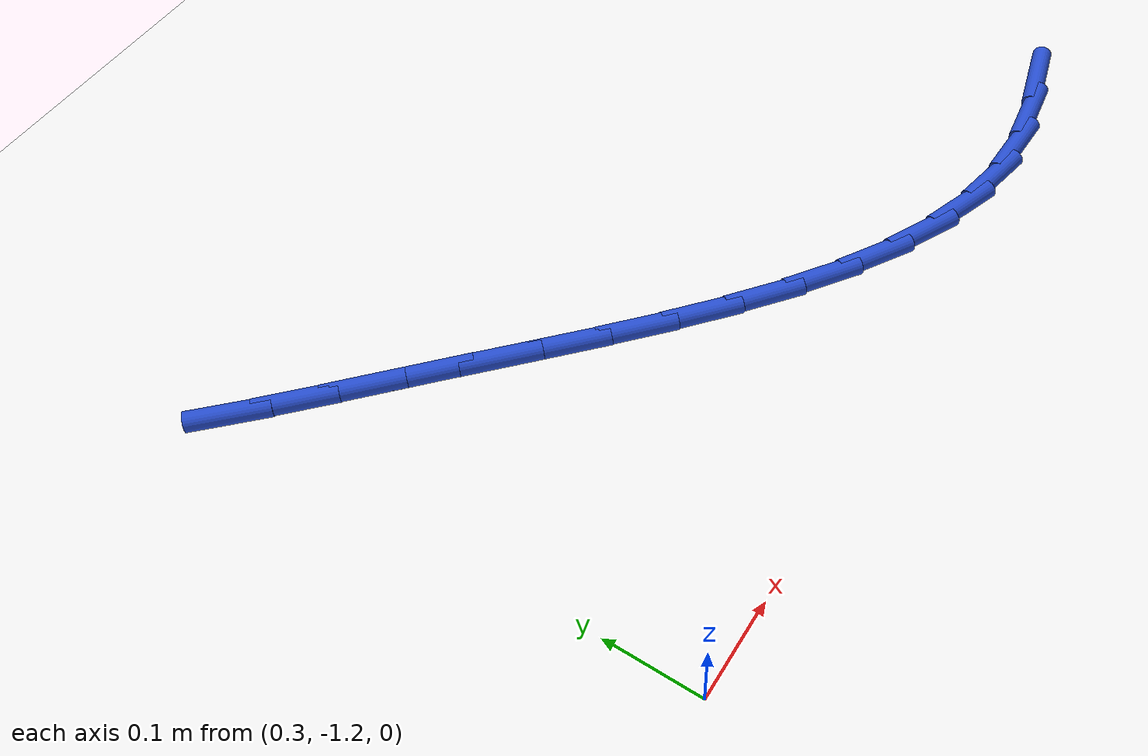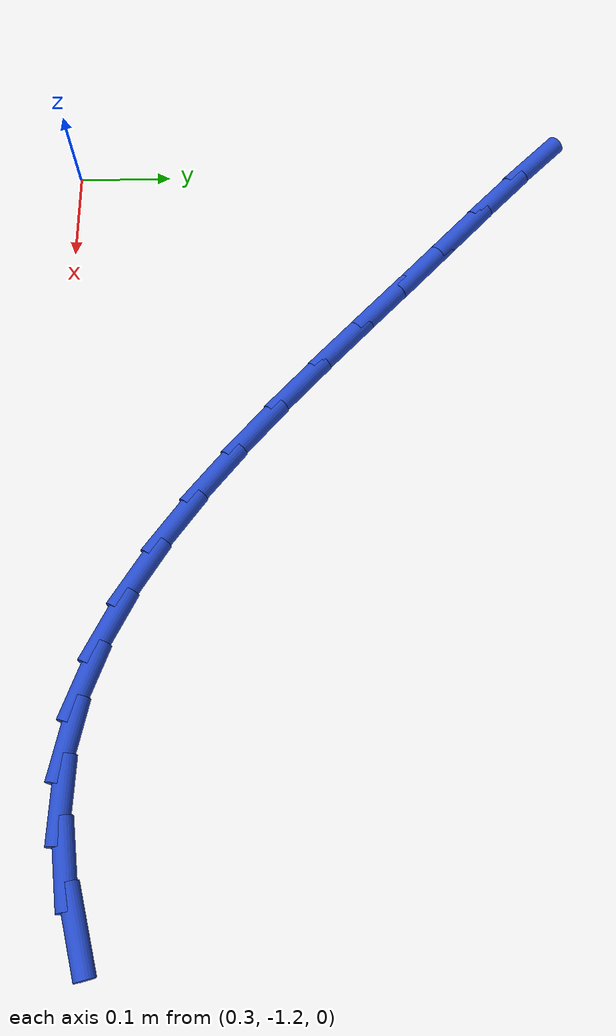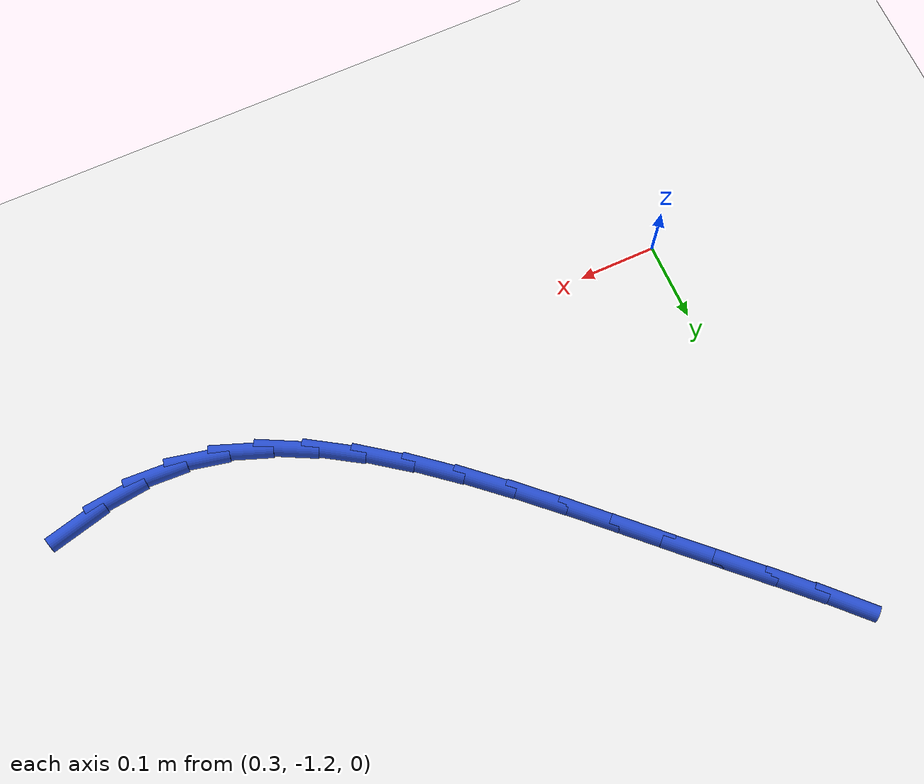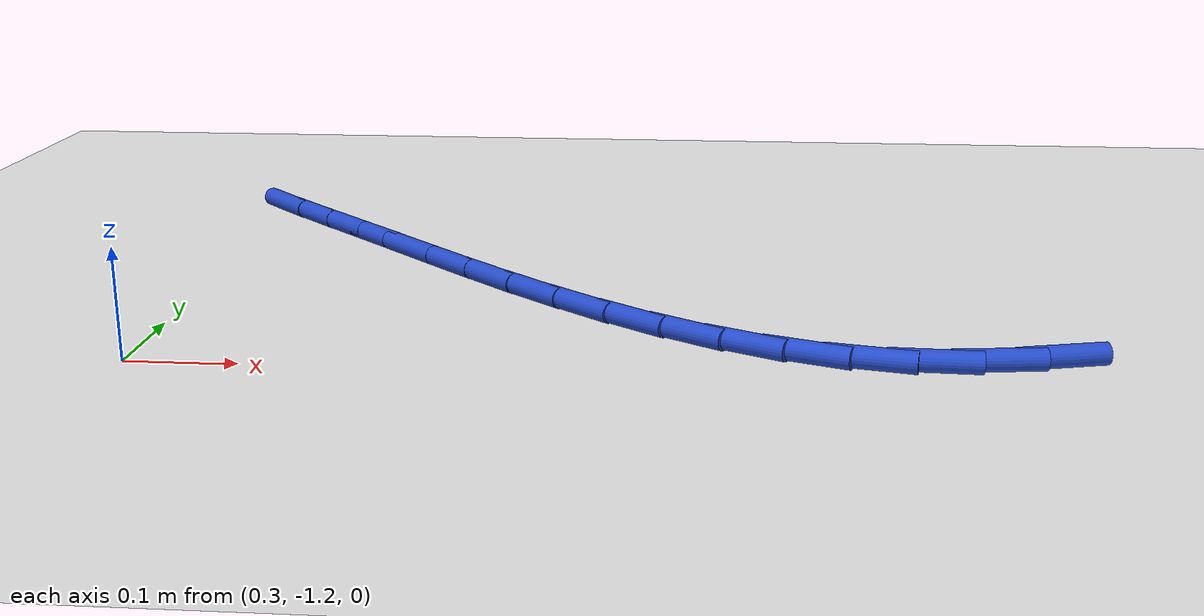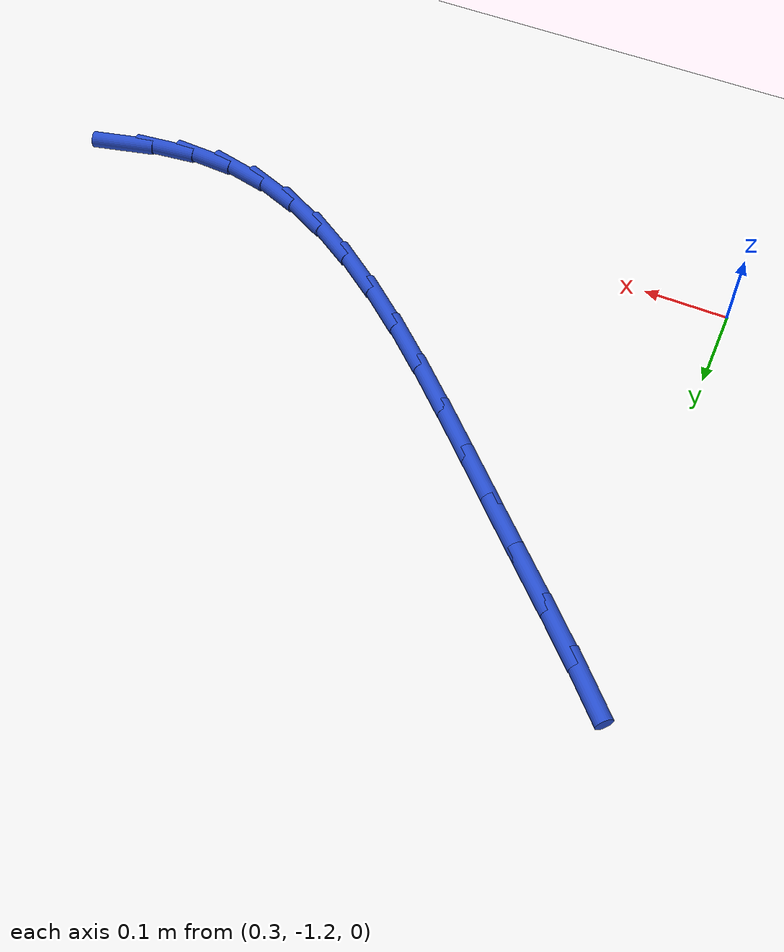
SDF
<sdf version="1.6">
 <world name="default">
  <model name="ground_plane">
   <static>1</static>
   <link name="link">
    <collision name="collision">
     <geometry><plane><normal>0 0 1</normal><size>100 100</size></plane></geometry>
     <surface><friction><ode><mu>100</mu><mu2>50</mu2></ode></friction></surface>
    </collision>
    <visual name="visual">
     <cast_shadows>0</cast_shadows>
     <geometry><plane><normal>0 0 1</normal><size>100 100</size></plane></geometry>
     <material>
      <script><uri>file://media/materials/scripts/gazebo.material</uri><name>Gazebo/WhiteGlow</name></script>
     </material>
    </visual>
   </link>
  </model>
  <model name="line">
   <link name="link_101">
    <pose>1.0916246392866724 -1.1544175302358712 0.01 0 1.57 0.24285830198355643</pose>
    <collision name="collision">
     <geometry><cylinder><radius>0.01</radius><length>0.08</length></cylinder></geometry>
    </collision>
    <visual name="visual">
     <material>
      <script><name>Gazebo/Blue</name><uri>file://media/materials/scripts/gazebo.material</uri></script>
     </material>
     <geometry><cylinder><radius>0.01</radius><length>0.08</length></cylinder></geometry>
    </visual>
   </link>
   <link name="link_102">
    <pose>1.0373609935160664 -1.1678612565806838 0.01 0 1.57 0.11743904388521537</pose>
    <collision name="collision">
     <geometry><cylinder><radius>0.01</radius><length>0.08</length></cylinder></geometry>
    </collision>
    <visual name="visual">
     <material>
      <script><name>Gazebo/Blue</name><uri>file://media/materials/scripts/gazebo.material</uri></script>
     </material>
     <geometry><cylinder><radius>0.01</radius><length>0.08</length></cylinder></geometry>
    </visual>
   </link>
   <link name="link_103">
    <pose>0.983798004581131 -1.1741807220765503 0.01 0 1.57 -0.04691897783779853</pose>
    <collision name="collision">
     <geometry><cylinder><radius>0.01</radius><length>0.08</length></cylinder></geometry>
    </collision>
    <visual name="visual">
     <material>
      <script><name>Gazebo/Blue</name><uri>file://media/materials/scripts/gazebo.material</uri></script>
     </material>
     <geometry><cylinder><radius>0.01</radius><length>0.08</length></cylinder></geometry>
    </visual>
   </link>
   <link name="link_104">
    <pose>0.9308092523546425 -1.171692718027713 0.01 0 1.57 -0.21559390068733944</pose>
    <collision name="collision">
     <geometry><cylinder><radius>0.01</radius><length>0.08</length></cylinder></geometry>
    </collision>
    <visual name="visual">
     <material>
      <script><name>Gazebo/Blue</name><uri>file://media/materials/scripts/gazebo.material</uri></script>
     </material>
     <geometry><cylinder><radius>0.01</radius><length>0.08</length></cylinder></geometry>
    </visual>
   </link>
   <link name="link_105">
    <pose>0.8783478742892474 -1.1602038065260682 0.01 0 1.57 -0.3588105428719645</pose>
    <collision name="collision">
     <geometry><cylinder><radius>0.01</radius><length>0.08</length></cylinder></geometry>
    </collision>
    <visual name="visual">
     <material>
      <script><name>Gazebo/Blue</name><uri>file://media/materials/scripts/gazebo.material</uri></script>
     </material>
     <geometry><cylinder><radius>0.01</radius><length>0.08</length></cylinder></geometry>
    </visual>
   </link>
   <link name="link_106">
    <pose>0.8264317503953963 -1.140732898901557 0.01 0 1.57 -0.47485108520492125</pose>
    <collision name="collision">
     <geometry><cylinder><radius>0.01</radius><length>0.08</length></cylinder></geometry>
    </collision>
    <visual name="visual">
     <material>
      <script><name>Gazebo/Blue</name><uri>file://media/materials/scripts/gazebo.material</uri></script>
     </material>
     <geometry><cylinder><radius>0.01</radius><length>0.08</length></cylinder></geometry>
    </visual>
   </link>
   <link name="link_107">
    <pose>0.7750806413995758 -1.114334124194558 0.01 0 1.57 -0.566261697551401</pose>
    <collision name="collision">
     <geometry><cylinder><radius>0.01</radius><length>0.08</length></cylinder></geometry>
    </collision>
    <visual name="visual">
     <material>
      <script><name>Gazebo/Blue</name><uri>file://media/materials/scripts/gazebo.material</uri></script>
     </material>
     <geometry><cylinder><radius>0.01</radius><length>0.08</length></cylinder></geometry>
    </visual>
   </link>
   <link name="link_108">
    <pose>0.7243143080282742 -1.0820616114454493 0.01 0 1.57 -0.6367146012159947</pose>
    <collision name="collision">
     <geometry><cylinder><radius>0.01</radius><length>0.08</length></cylinder></geometry>
    </collision>
    <visual name="visual">
     <material>
      <script><name>Gazebo/Blue</name><uri>file://media/materials/scripts/gazebo.material</uri></script>
     </material>
     <geometry><cylinder><radius>0.01</radius><length>0.08</length></cylinder></geometry>
    </visual>
   </link>
   <link name="link_109">
    <pose>0.6741525110079784 -1.0449694896946096 0.01 0 1.57 -0.6896698779034225</pose>
    <collision name="collision">
     <geometry><cylinder><radius>0.01</radius><length>0.08</length></cylinder></geometry>
    </collision>
    <visual name="visual">
     <material>
      <script><name>Gazebo/Blue</name><uri>file://media/materials/scripts/gazebo.material</uri></script>
     </material>
     <geometry><cylinder><radius>0.01</radius><length>0.08</length></cylinder></geometry>
    </visual>
   </link>
   <link name="link_110">
    <pose>0.6246150110651744 -1.004111887982416 0.01 0 1.57 -0.7278762301370987</pose>
    <collision name="collision">
     <geometry><cylinder><radius>0.01</radius><length>0.08</length></cylinder></geometry>
    </collision>
    <visual name="visual">
     <material>
      <script><name>Gazebo/Blue</name><uri>file://media/materials/scripts/gazebo.material</uri></script>
     </material>
     <geometry><cylinder><radius>0.01</radius><length>0.08</length></cylinder></geometry>
    </visual>
   </link>
   <link name="link_111">
    <pose>0.5757215689263511 -0.9605429353492482 0.01 0 1.57 -0.7532715775710532</pose>
    <collision name="collision">
     <geometry><cylinder><radius>0.01</radius><length>0.08</length></cylinder></geometry>
    </collision>
    <visual name="visual">
     <material>
      <script><name>Gazebo/Blue</name><uri>file://media/materials/scripts/gazebo.material</uri></script>
     </material>
     <geometry><cylinder><radius>0.01</radius><length>0.08</length></cylinder></geometry>
    </visual>
   </link>
   <link name="link_112">
    <pose>0.5274919453179947 -0.9153167608354833 0.01 0 1.57 -0.7670144647425978</pose>
    <collision name="collision">
     <geometry><cylinder><radius>0.01</radius><length>0.08</length></cylinder></geometry>
    </collision>
    <visual name="visual">
     <material>
      <script><name>Gazebo/Blue</name><uri>file://media/materials/scripts/gazebo.material</uri></script>
     </material>
     <geometry><cylinder><radius>0.01</radius><length>0.08</length></cylinder></geometry>
    </visual>
   </link>
   <link name="link_113">
    <pose>0.4799459009665926 -0.8694874934815 0.01 0 1.57 -0.7695194464576363</pose>
    <collision name="collision">
     <geometry><cylinder><radius>0.01</radius><length>0.08</length></cylinder></geometry>
    </collision>
    <visual name="visual">
     <material>
      <script><name>Gazebo/Blue</name><uri>file://media/materials/scripts/gazebo.material</uri></script>
     </material>
     <geometry><cylinder><radius>0.01</radius><length>0.08</length></cylinder></geometry>
    </visual>
   </link>
   <link name="link_114">
    <pose>0.4331031965986319 -0.8241092623276763 0.01 0 1.57 -0.7638818806050407</pose>
    <collision name="collision">
     <geometry><cylinder><radius>0.01</radius><length>0.08</length></cylinder></geometry>
    </collision>
    <visual name="visual">
     <material>
      <script><name>Gazebo/Blue</name><uri>file://media/materials/scripts/gazebo.material</uri></script>
     </material>
     <geometry><cylinder><radius>0.01</radius><length>0.08</length></cylinder></geometry>
    </visual>
   </link>
   <link name="link_115">
    <pose>0.38703630740611544 -0.7799832878213652 0.01 0 1.57 -0.7646666013985846</pose>
    <collision name="collision">
     <geometry><cylinder><radius>0.01</radius><length>0.08</length></cylinder></geometry>
    </collision>
    <visual name="visual">
     <material>
      <script><name>Gazebo/Blue</name><uri>file://media/materials/scripts/gazebo.material</uri></script>
     </material>
     <geometry><cylinder><radius>0.01</radius><length>0.08</length></cylinder></geometry>
    </visual>
   </link>
   <link name="link_116">
    <pose>0.34204508412766294 -0.7368199090167477 0.01 0 1.57 -0.7764810883860501</pose>
    <collision name="collision">
     <geometry><cylinder><radius>0.01</radius><length>0.08</length></cylinder></geometry>
    </collision>
    <visual name="visual">
     <material>
      <script><name>Gazebo/Blue</name><uri>file://media/materials/scripts/gazebo.material</uri></script>
     </material>
     <geometry><cylinder><radius>0.01</radius><length>0.08</length></cylinder></geometry>
    </visual>
   </link>
   <link name="link_117">
    <pose>0.29849066923627515 -0.6940354051467594 0.01 0 1.57 -0.7999452405204146</pose>
    <collision name="collision">
     <geometry><cylinder><radius>0.01</radius><length>0.08</length></cylinder></geometry>
    </collision>
    <visual name="visual">
     <material>
      <script><name>Gazebo/Blue</name><uri>file://media/materials/scripts/gazebo.material</uri></script>
     </material>
     <geometry><cylinder><radius>0.01</radius><length>0.08</length></cylinder></geometry>
    </visual>
   </link>
  </model>
 </world>
</sdf>
